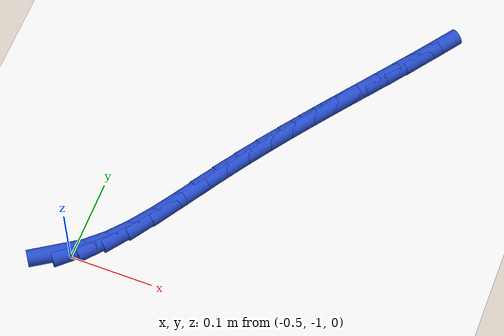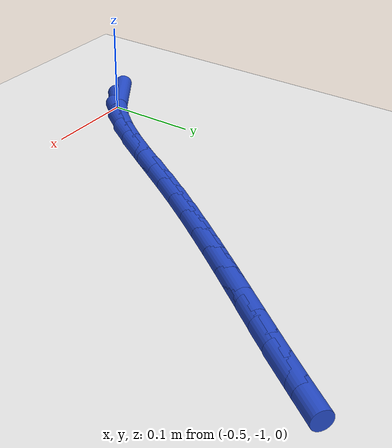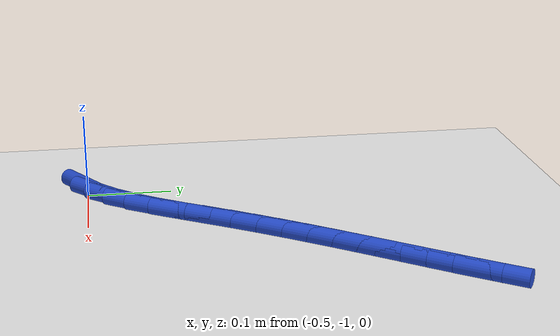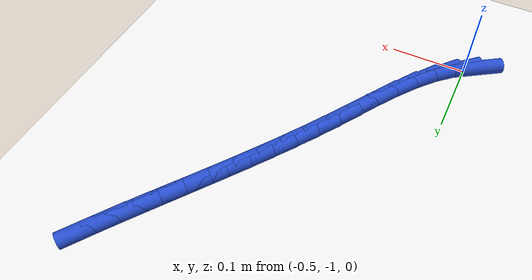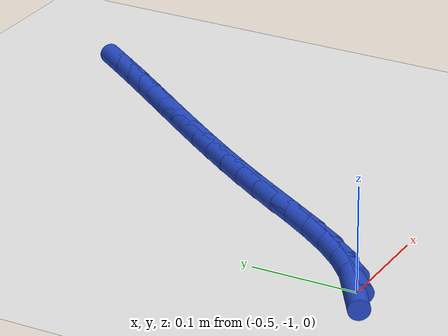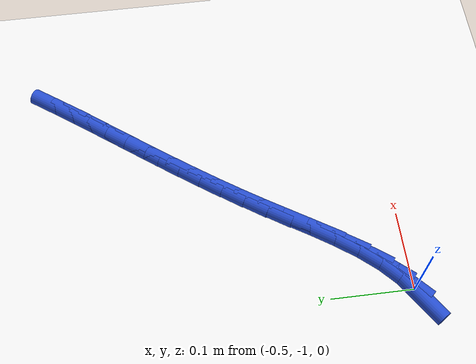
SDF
<sdf version="1.6">
 <world name="default">
  <model name="ground_plane">
   <static>1</static>
   <link name="link">
    <collision name="collision">
     <geometry><plane><normal>0 0 1</normal><size>100 100</size></plane></geometry>
     <surface><friction><ode><mu>100</mu><mu2>50</mu2></ode></friction></surface>
    </collision>
    <visual name="visual">
     <cast_shadows>0</cast_shadows>
     <geometry><plane><normal>0 0 1</normal><size>100 100</size></plane></geometry>
     <material>
      <script><uri>file://media/materials/scripts/gazebo.material</uri><name>Gazebo/WhiteGlow</name></script>
     </material>
    </visual>
   </link>
  </model>
  <model name="line">
   <link name="link_241">
    <pose>-0.5096182625171537 -1.0017206356393464 0.01 0 1.57 0.5769216432426957</pose>
    <collision name="collision">
     <geometry><cylinder><radius>0.01</radius><length>0.08</length></cylinder></geometry>
    </collision>
    <visual name="visual">
     <material>
      <script><name>Gazebo/Blue</name><uri>file://media/materials/scripts/gazebo.material</uri></script>
     </material>
     <geometry><cylinder><radius>0.01</radius><length>0.08</length></cylinder></geometry>
    </visual>
   </link>
   <link name="link_242">
    <pose>-0.4870845056268268 -0.9870561722569747 0.01 0 1.57 0.7408908319548285</pose>
    <collision name="collision">
     <geometry><cylinder><radius>0.01</radius><length>0.08</length></cylinder></geometry>
    </collision>
    <visual name="visual">
     <material>
      <script><name>Gazebo/Blue</name><uri>file://media/materials/scripts/gazebo.material</uri></script>
     </material>
     <geometry><cylinder><radius>0.01</radius><length>0.08</length></cylinder></geometry>
    </visual>
   </link>
   <link name="link_243">
    <pose>-0.46621045718409143 -0.9679621705892683 0.01 0 1.57 0.8582863769626055</pose>
    <collision name="collision">
     <geometry><cylinder><radius>0.01</radius><length>0.08</length></cylinder></geometry>
    </collision>
    <visual name="visual">
     <material>
      <script><name>Gazebo/Blue</name><uri>file://media/materials/scripts/gazebo.material</uri></script>
     </material>
     <geometry><cylinder><radius>0.01</radius><length>0.08</length></cylinder></geometry>
    </visual>
   </link>
   <link name="link_244">
    <pose>-0.4466769765214555 -0.9453514207983448 0.01 0 1.57 0.9374992127022267</pose>
    <collision name="collision">
     <geometry><cylinder><radius>0.01</radius><length>0.08</length></cylinder></geometry>
    </collision>
    <visual name="visual">
     <material>
      <script><name>Gazebo/Blue</name><uri>file://media/materials/scripts/gazebo.material</uri></script>
     </material>
     <geometry><cylinder><radius>0.01</radius><length>0.08</length></cylinder></geometry>
    </visual>
   </link>
   <link name="link_245">
    <pose>-0.42816492297142505 -0.9201367130463198 0.01 0 1.57 0.9860811372318451</pose>
    <collision name="collision">
     <geometry><cylinder><radius>0.01</radius><length>0.08</length></cylinder></geometry>
    </collision>
    <visual name="visual">
     <material>
      <script><name>Gazebo/Blue</name><uri>file://media/materials/scripts/gazebo.material</uri></script>
     </material>
     <geometry><cylinder><radius>0.01</radius><length>0.08</length></cylinder></geometry>
    </visual>
   </link>
   <link name="link_246">
    <pose>-0.4103551558665065 -0.8932308374953102 0.01 0 1.57 1.0089835365762045</pose>
    <collision name="collision">
     <geometry><cylinder><radius>0.01</radius><length>0.08</length></cylinder></geometry>
    </collision>
    <visual name="visual">
     <material>
      <script><name>Gazebo/Blue</name><uri>file://media/materials/scripts/gazebo.material</uri></script>
     </material>
     <geometry><cylinder><radius>0.01</radius><length>0.08</length></cylinder></geometry>
    </visual>
   </link>
   <link name="link_247">
    <pose>-0.39292853453920695 -0.8655465843074319 0.01 0 1.57 1.0084587141981989</pose>
    <collision name="collision">
     <geometry><cylinder><radius>0.01</radius><length>0.08</length></cylinder></geometry>
    </collision>
    <visual name="visual">
     <material>
      <script><name>Gazebo/Blue</name><uri>file://media/materials/scripts/gazebo.material</uri></script>
     </material>
     <geometry><cylinder><radius>0.01</radius><length>0.08</length></cylinder></geometry>
    </visual>
   </link>
   <link name="link_248">
    <pose>-0.37556607018344773 -0.8379963341004771 0.01 0 1.57 0.9907449161623519</pose>
    <collision name="collision">
     <geometry><cylinder><radius>0.01</radius><length>0.08</length></cylinder></geometry>
    </collision>
    <visual name="visual">
     <material>
      <script><name>Gazebo/Blue</name><uri>file://media/materials/scripts/gazebo.material</uri></script>
     </material>
     <geometry><cylinder><radius>0.01</radius><length>0.08</length></cylinder></geometry>
    </visual>
   </link>
   <link name="link_249">
    <pose>-0.3580394298042266 -0.8112479842379088 0.01 0 1.57 0.9725907233677887</pose>
    <collision name="collision">
     <geometry><cylinder><radius>0.01</radius><length>0.08</length></cylinder></geometry>
    </collision>
    <visual name="visual">
     <material>
      <script><name>Gazebo/Blue</name><uri>file://media/materials/scripts/gazebo.material</uri></script>
     </material>
     <geometry><cylinder><radius>0.01</radius><length>0.08</length></cylinder></geometry>
    </visual>
   </link>
   <link name="link_250">
    <pose>-0.34036400595190086 -0.7853121458730169 0.01 0 1.57 0.9570738985767725</pose>
    <collision name="collision">
     <geometry><cylinder><radius>0.01</radius><length>0.08</length></cylinder></geometry>
    </collision>
    <visual name="visual">
     <material>
      <script><name>Gazebo/Blue</name><uri>file://media/materials/scripts/gazebo.material</uri></script>
     </material>
     <geometry><cylinder><radius>0.01</radius><length>0.08</length></cylinder></geometry>
    </visual>
   </link>
   <link name="link_251">
    <pose>-0.32259572995787855 -0.7600901039835259 0.01 0 1.57 0.9444170649644786</pose>
    <collision name="collision">
     <geometry><cylinder><radius>0.01</radius><length>0.08</length></cylinder></geometry>
    </collision>
    <visual name="visual">
     <material>
      <script><name>Gazebo/Blue</name><uri>file://media/materials/scripts/gazebo.material</uri></script>
     </material>
     <geometry><cylinder><radius>0.01</radius><length>0.08</length></cylinder></geometry>
    </visual>
   </link>
   <link name="link_252">
    <pose>-0.3047905331535671 -0.7354831435471605 0.01 0 1.57 0.934822659623588</pose>
    <collision name="collision">
     <geometry><cylinder><radius>0.01</radius><length>0.08</length></cylinder></geometry>
    </collision>
    <visual name="visual">
     <material>
      <script><name>Gazebo/Blue</name><uri>file://media/materials/scripts/gazebo.material</uri></script>
     </material>
     <geometry><cylinder><radius>0.01</radius><length>0.08</length></cylinder></geometry>
    </visual>
   </link>
   <link name="link_253">
    <pose>-0.2870043468703751 -0.7113925495416454 0.01 0 1.57 0.92847126667849</pose>
    <collision name="collision">
     <geometry><cylinder><radius>0.01</radius><length>0.08</length></cylinder></geometry>
    </collision>
    <visual name="visual">
     <material>
      <script><name>Gazebo/Blue</name><uri>file://media/materials/scripts/gazebo.material</uri></script>
     </material>
     <geometry><cylinder><radius>0.01</radius><length>0.08</length></cylinder></geometry>
    </visual>
   </link>
   <link name="link_254">
    <pose>-0.2692931024397103 -0.6877196069447051 0.01 0 1.57 0.9255199637448523</pose>
    <collision name="collision">
     <geometry><cylinder><radius>0.01</radius><length>0.08</length></cylinder></geometry>
    </collision>
    <visual name="visual">
     <material>
      <script><name>Gazebo/Blue</name><uri>file://media/materials/scripts/gazebo.material</uri></script>
     </material>
     <geometry><cylinder><radius>0.01</radius><length>0.08</length></cylinder></geometry>
    </visual>
   </link>
   <link name="link_255">
    <pose>-0.25171273119298027 -0.664365600734064 0.01 0 1.57 0.9261003777967531</pose>
    <collision name="collision">
     <geometry><cylinder><radius>0.01</radius><length>0.08</length></cylinder></geometry>
    </collision>
    <visual name="visual">
     <material>
      <script><name>Gazebo/Blue</name><uri>file://media/materials/scripts/gazebo.material</uri></script>
     </material>
     <geometry><cylinder><radius>0.01</radius><length>0.08</length></cylinder></geometry>
    </visual>
   </link>
   <link name="link_256">
    <pose>-0.23431916446159312 -0.6412318158874467 0.01 0 1.57 0.930316164368343</pose>
    <collision name="collision">
     <geometry><cylinder><radius>0.01</radius><length>0.08</length></cylinder></geometry>
    </collision>
    <visual name="visual">
     <material>
      <script><name>Gazebo/Blue</name><uri>file://media/materials/scripts/gazebo.material</uri></script>
     </material>
     <geometry><cylinder><radius>0.01</radius><length>0.08</length></cylinder></geometry>
    </visual>
   </link>
   <link name="link_257">
    <pose>-0.21716833357695667 -0.6182195373825777 0.01 0 1.57 0.9382396840692094</pose>
    <collision name="collision">
     <geometry><cylinder><radius>0.01</radius><length>0.08</length></cylinder></geometry>
    </collision>
    <visual name="visual">
     <material>
      <script><name>Gazebo/Blue</name><uri>file://media/materials/scripts/gazebo.material</uri></script>
     </material>
     <geometry><cylinder><radius>0.01</radius><length>0.08</length></cylinder></geometry>
    </visual>
   </link>
   <link name="link_258">
    <pose>-0.2003161698704788 -0.5952300501971813 0.01 0 1.57 0.9499077563160118</pose>
    <collision name="collision">
     <geometry><cylinder><radius>0.01</radius><length>0.08</length></cylinder></geometry>
    </collision>
    <visual name="visual">
     <material>
      <script><name>Gazebo/Blue</name><uri>file://media/materials/scripts/gazebo.material</uri></script>
     </material>
     <geometry><cylinder><radius>0.01</radius><length>0.08</length></cylinder></geometry>
    </visual>
   </link>
  </model>
 </world>
</sdf>
